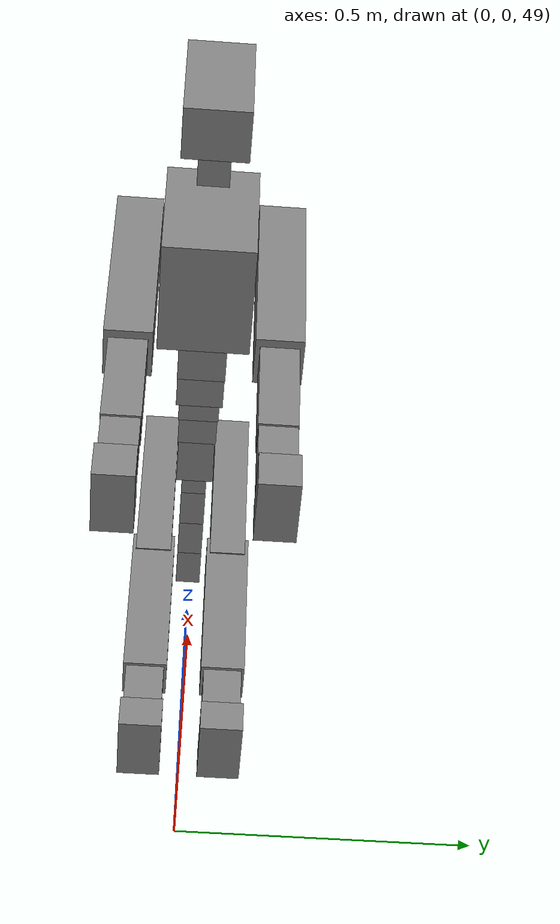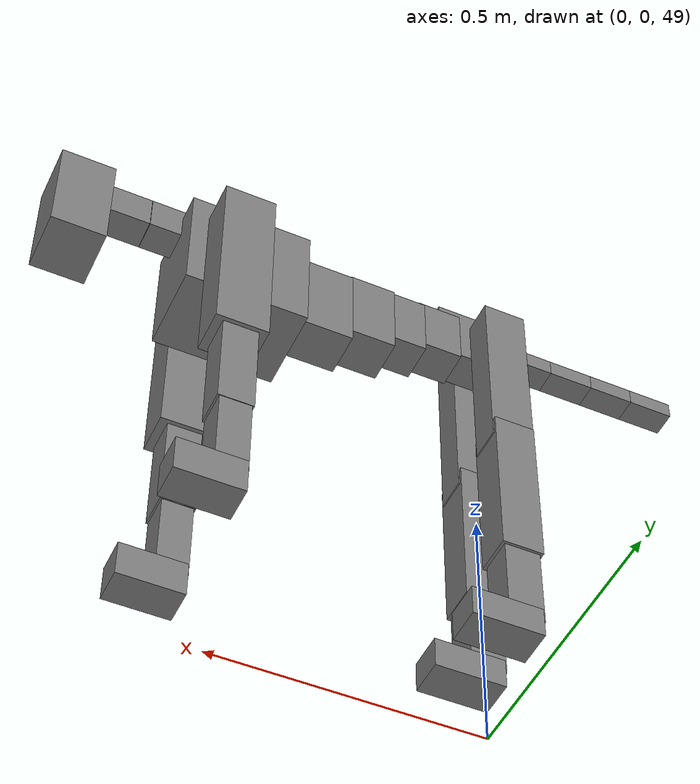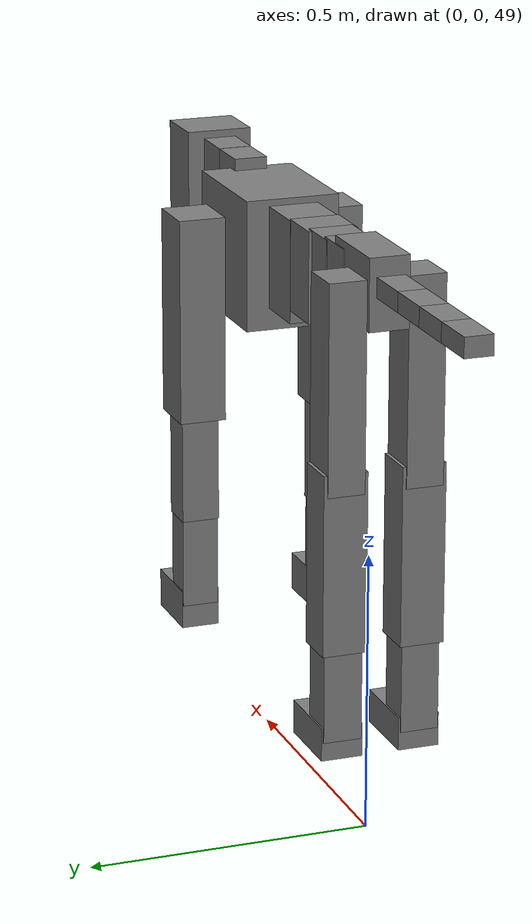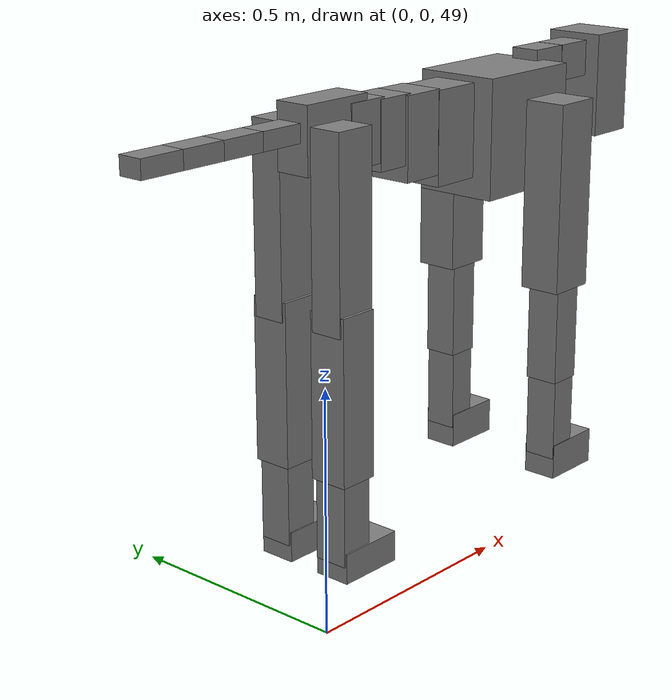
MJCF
<mujoco model="dog">

    <default>
        <joint armature="0.02" stiffness="1" damping="0.2" limited="true" />
        <geom condim="3" friction="1 0.05 0.05" margin="0.01" />
        <motor ctrllimited="true" ctrlrange="-1.0 1.0" forcelimited="true" gear="50" />
    </default>

    <compiler inertiafromgeom="true" angle="radian" />

    <option timestep="0.016" iterations="50" tolerance="1e-10" solver="Newton" jacobian="dense" cone="pyramidal" />

    <size nconmax="20000" njmax="60000" nstack="5000000" />
    <visual>
        <map force="0.1" zfar="30" />
        <rgba haze="0.15 0.25 0.35 1" />
        <quality shadowsize="2048" />
        <global offwidth="800" offheight="800" />
    </visual>

    <asset>
        <texture type="skybox" builtin="gradient" rgb1="0.3 0.5 0.7" rgb2="0 0 0" width="512" height="512" />
        <texture name="texplane" type="2d" builtin="checker" rgb1=".2 .3 .4" rgb2=".1 0.15 0.2" width="512" height="512" mark="cross" markrgb=".8 .8 .8" />
        <texture name="texgeom" type="cube" builtin="flat" mark="cross" width="127" height="1278" rgb1="0.8 0.6 0.4" rgb2="0.8 0.6 0.4" markrgb="1 1 1" random="0.01" />

        <material name="matplane" reflectance="0.3" texture="texplane" texrepeat="1 1" texuniform="true" />
        <material name="matgeom" texture="texgeom" texuniform="true" rgba="0.8 0.6 .4 1" />
    </asset>

    <worldbody>
        <geom name="floor" pos="0 0 0" size="0 0 .25" type="plane" material="matplane" condim="3" />

        <light directional="false" diffuse=".2 .2 .2" specular="0 0 0" pos="0 0 5" dir="0 0 -1" castshadow="false" />
        <light mode="targetbodycom" target="torso" directional="false" diffuse=".8 .8 .8" specular="0.3 0.3 0.3" pos="0 0 4.0" dir="0 0 -1" />

        <body name="root" pos="0 0 50">
            <freejoint name="root_1" />
            <geom type="box" pos="0 0 -0.02" size="0.0774  0.0358  0.063" density="2030" />

            <body name="spine1" pos="0.054 0 0">
                <joint name="spine1_y" axis="0 1 0" range="0 0.7" limited="true" />
                <geom type="box" pos="0.02375 0 -0.03" size="0.04375  0.0375  0.05985" density="2030" />

                <body name="spine2" pos="0.0612 0 0">
                    <joint name="spine2_y" axis="0 1 0" range="-0.15 0.15" limited="true" />
                    <geom type="box" pos="0.03555  0  -0.04" size="0.04055  0.039  0.06615" density="2030" />

                    <body name="spine3" pos="0.0730 0 0">
                        <joint name="spine3_y" axis="0 1 0" range="-0.15 0.15" limited="true" />
                        <geom type="box" pos="0.03555  0  -0.057" size="0.04555  0.0445  0.081" density="2030" />

                        <body name="spine4" pos="0.0780 0 0">
                            <joint name="spine4_y" axis="0 1 0" range="-0.15 0.15" limited="true" />
                            <geom type="box" pos="0.05265  0  -0.07" size="0.05265  0.045  0.09135" density="2030" />

                            <body name="torso" pos="0.1082 0 0">
                                <joint name="torso_y" axis="0 1 0" range="-0.15 0.15" limited="true" />
                                <geom type="box" pos="0.11925  0  -0.085" size="0.11925  0.085  0.11745" density="2030" />

                                <body name="neck1" pos="0.2160  0   0.0180">
                                    <joint name="neck1_y" axis="0 1 0" range="-1.2  -1" limited="true" />
                                    <geom type="box" pos="0.0423  0  0" size="0.0423  0.03  0.036" density="2325" />

                                    <body name="neck2" pos="0.0853  0  0">
                                        <joint name="neck2_y" axis="0 1 0" range="0.1  0" limited="true" />
                                        <geom type="box" pos="0.0423  0  0" size="0.0423  0.03  0.036" density="2325" />

                                        <body name="head" pos="0.0853  0  0">
                                            <joint name="head_y" axis="0 1 0" range="-0.3  -0.2" limited="true" />
                                            <geom type="box" pos="0.0531  0  -0.055" size="0.0531  0.06  0.1044" density="4030" />

                                        </body>
                                    </body>
                                </body>

                                <body name="front_shoulder" pos="0.156  0   -0.0480">
                                    <joint name="front_shoulder_y" axis="0 1 0" range="-1 1.5" limited="true" />
                                    <geom type="box" pos="0 0.13 -0.1605" size="0.0496  0.0424  0.1871" density="1158" />
                                    <geom type="box" pos="0 -0.13 -0.1605" size="0.0496  0.0424  0.1871" density="1158" />

                                    <body name="front_elbow" pos="0  0  -0.3209">
                                        <joint name="front_elbow_y" axis="0 1 0" range="-2 0" limited="true" />
                                        <geom type="box" pos="0 0.13 -0.1095" size="0.0334  0.0342  0.1095" density="1081" />
                                        <geom type="box" pos="0 -0.13 -0.1095" size="0.0334  0.0342  0.1095" density="1081" />

                                        <body name="front_wrist" pos="0  0  -0.2190">
                                            <joint name="front_wrist_y" axis="0 1 0" range="-0.2 0" limited="true" />
                                            <geom type="box" pos="0 0.13 -0.0753" size="0.0298  0.0331  0.0885" density="1664" />
                                            <geom type="box" pos="0 -0.13 -0.0753" size="0.0298  0.0331  0.0885" density="1664" />

                                            <body name="front_finger_end" pos="0  0  -0.1506">
                                                <joint name="front_finger_y" axis="0 1 0" range="-0.4 1" limited="true" />
                                                <geom type="box" pos="0.0346  0.13  -0.0203" size="0.0634  0.0346  0.0353" density="1515" />
                                                <geom type="box" pos="0.0346  -0.13  -0.0203" size="0.0634  0.0346  0.0353" density="1515" />

                                            </body>

                                        </body>
                                    </body>
                                </body>

                            </body>
                        </body>
                    </body>
                </body>
            </body>

            <body name="back_hip" pos="-0.03 0 -0.018">
                <joint name="back_hip_y" axis="0 1 0" range="-1.5 0.3" limited="true" />
                <geom type="box" pos="0 0.07 -0.1608" size="0.0421  0.0330  0.1836" density="1154" />
                <geom type="box" pos="0 -0.07 -0.1608" size="0.0421  0.0330  0.1836" density="1154" />

                <body name="back_knee" pos="0  0  -0.3216">
                    <joint name="back_knee_y" axis="0 1 0" range="0 2.8" limited="true" />
                    <geom type="box" pos="0 0.07 -0.1449" size="0.0397  0.0391  0.1604" density="1227" />
                    <geom type="box" pos="0 -0.07 -0.1449" size="0.0397  0.0391  0.1604" density="1227" />

                    <body name="back_ankle" pos="0  0  -0.2898">
                        <joint name="back_ankle_y" axis="0 1 0" range="-2.2 0" limited="true" />
                        <geom type="box" pos="0 0.07 -0.0815" size="0.0340  0.0340  0.0928" density="1284" />
                        <geom type="box" pos="0 -0.07 -0.0815" size="0.0340  0.0340  0.0928" density="1284" />

                        <body name="back_toe_end" pos="0  0  -0.1630">
                            <joint name="back_toe_y" axis="0 1 0" range="-0.4 1" limited="true" />
                            <geom type="box" pos="0.0368  0.07  -0.0149" size="0.0675  0.0368  0.0299" density="1515" />
                            <geom type="box" pos="0.0368  -0.07  -0.0149" size="0.0675  0.0368  0.0299" density="1515" />

                        </body>
                    </body>
                </body>
            </body>

            <body name="tail1" pos="-0.074 0 -0.006">
                <joint name="tail1_y" axis="0 1 0" range="-0.2 0.2" limited="true" />
                <geom type="box" pos="-0.0536  0  0" size="0.045  0.025  0.0175" density="1587" />

                <body name="tail2" pos="-0.09 0 0">
                    <joint name="tail2_y" axis="0 1 0" range="-0.2 0.2" limited="true" />
                    <geom type="box" pos="-0.0536  0  0" size="0.045  0.025  0.0175" density="1587" />

                    <body name="tail3" pos="-0.09 0 0">
                        <joint name="tail3_y" axis="0 1 0" range="-0.2 0.2" limited="true" />
                        <geom type="box" pos="-0.0536  0  0" size="0.045  0.025  0.0175" density="1587" />

                        <body name="tail4" pos="-0.09 0 0">
                            <joint name="tail4_y" axis="0 1 0" range="-0.2 0.2" limited="true" />
                            <geom type="box" pos="-0.0536  0  0" size="0.045  0.025  0.0175" density="1587" />

                        </body>
                    </body>
                </body>
            </body>
        </body>
    </worldbody>

    <actuator>
        <motor joint="spine1_y" forcerange="-150 150     " />
        <motor joint="spine2_y" forcerange="-150 150     " />
        <motor joint="spine3_y" forcerange="-150 150     " />
        <motor joint="spine4_y" forcerange="-150 150     " />
        <motor joint="torso_y" forcerange="-150 150     " />
        <motor joint="neck1_y" forcerange="-100 100       " />
        <motor joint="neck2_y" forcerange="-100 100       " />
        <motor joint="head_y" forcerange="-150 150       " />
        <motor joint="front_shoulder_y" forcerange="-187.02 195.77" />
        <motor joint="front_elbow_y" forcerange="-191.05 157.33" />
        <motor joint="front_wrist_y" forcerange="-118.65 145.96" />
        <motor joint="front_finger_y" forcerange="-67.87 76.47" />
        <motor joint="back_hip_y" forcerange="-309.88 330.53" />
        <motor joint="back_knee_y" forcerange="-374.86 394.31" />
        <motor joint="back_angle_y" forcerange="-195.27 249.07" />
        <motor joint="back_toe_y" forcerange="-122.82 91.93" />
        <motor joint="tail1_y" forcerange="-50 50     " />
        <motor joint="tail2_y" forcerange="-50 50     " />
        <motor joint="tail3_y" forcerange="-50 50     " />
        <motor joint="tail4_y" forcerange="-50 50     " />
    </actuator>
</mujoco>
